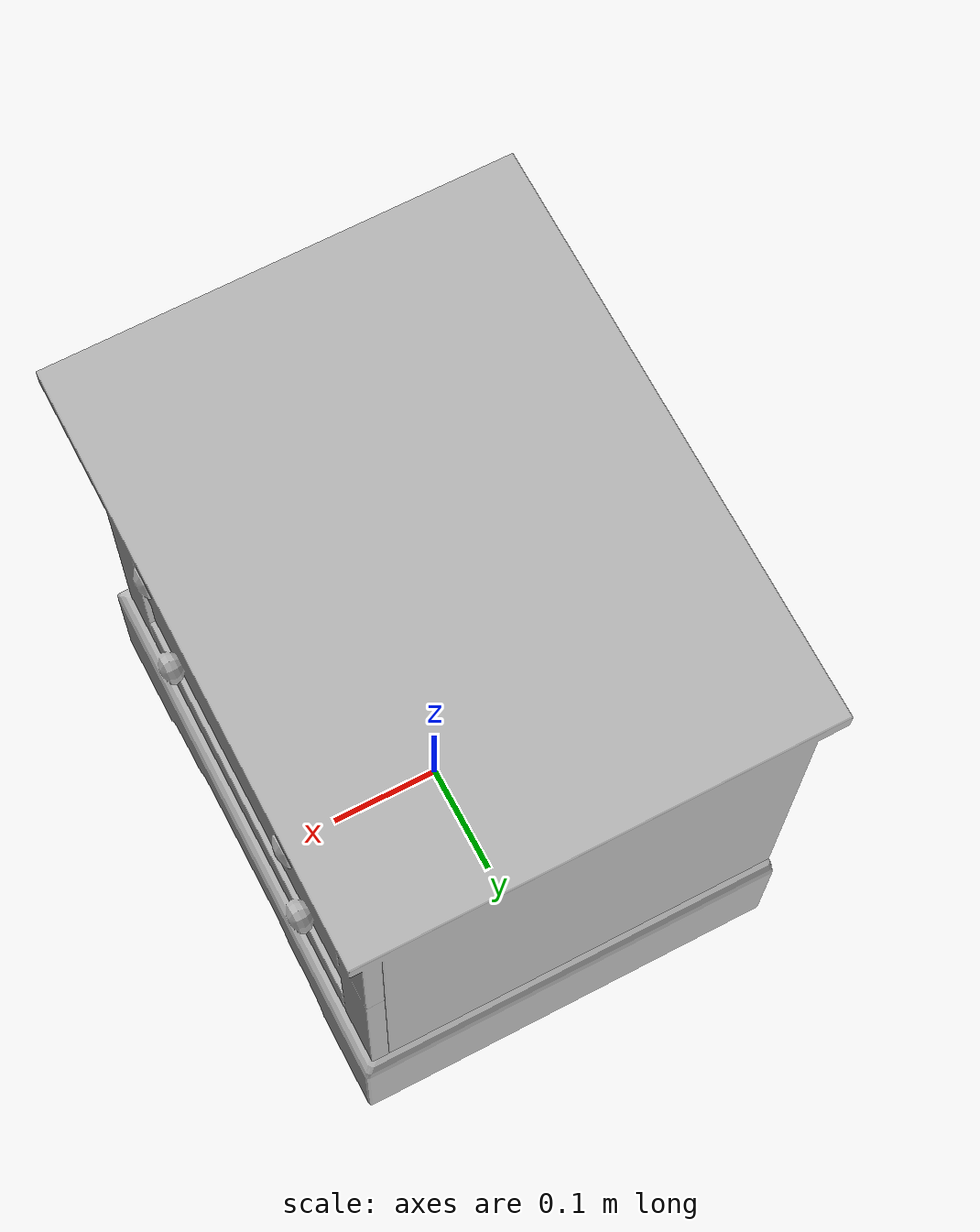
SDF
<?xml version='1.0'?>
<sdf version='1.4'>
  <model name='s__594'>
    <pose>0 0 0 0 0 0</pose>
    <static>true</static>
    <link name='link'>
      <collision name='collision'>
        <pose>0 0 0 0 0 0</pose>
        <geometry>
          <box>
            <size>0.39 0.5 2</size>
          </box>
        </geometry>
      </collision>
      <visual name='visual'>
        <pose>0 0 0 0 0 0</pose>
        <geometry>
          <mesh><uri>model://s__594/s__594.dae</uri></mesh>
        </geometry>
      </visual>
    </link>
  </model>
</sdf>
